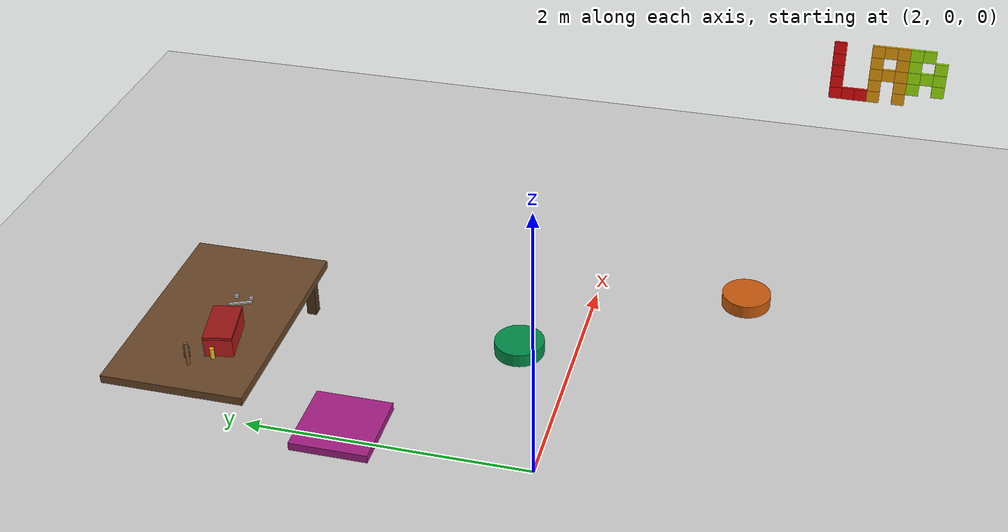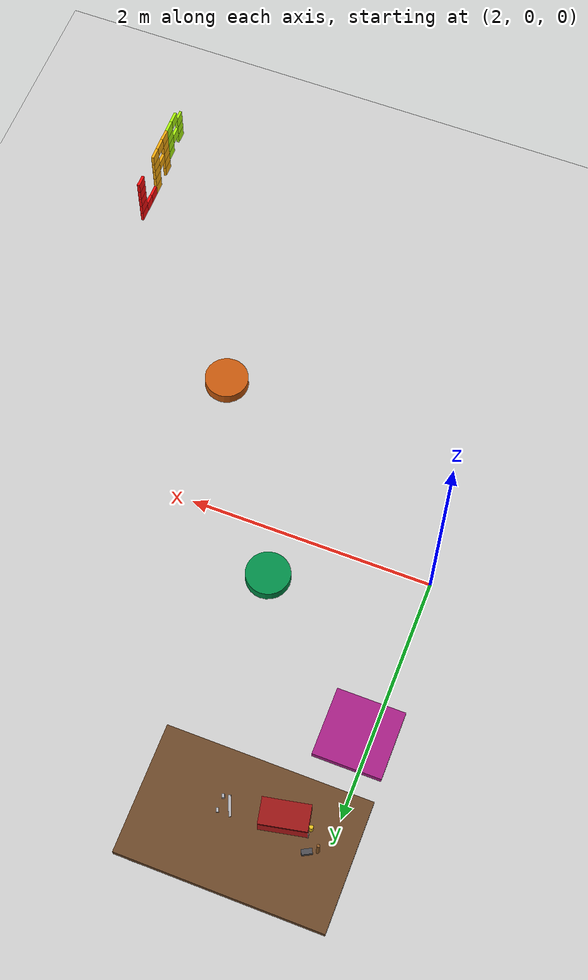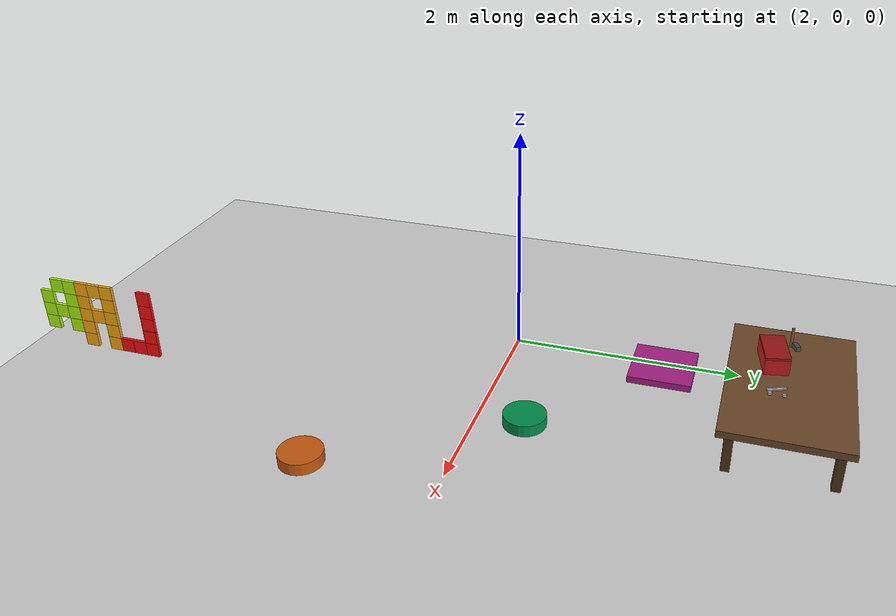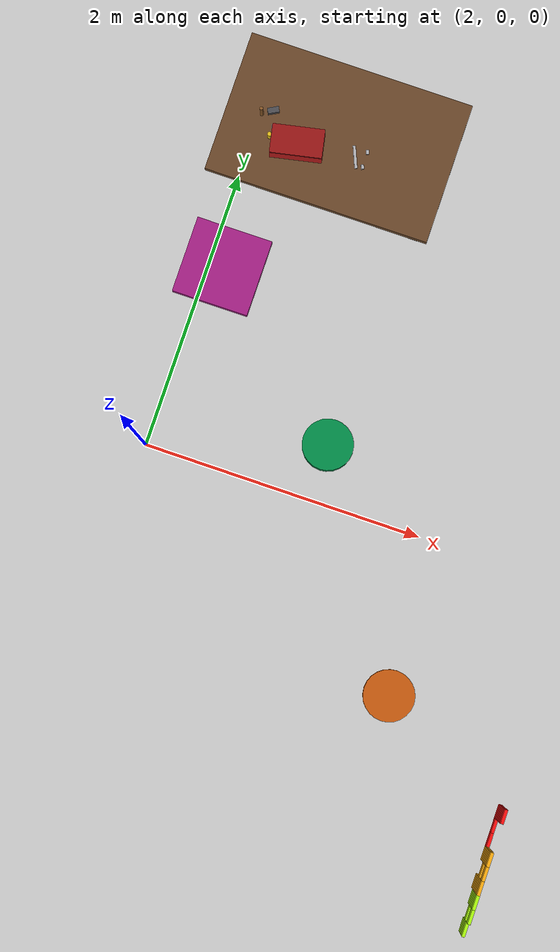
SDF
<sdf version="1.6">
 <world name="collab_workshop">
  <include><uri>model://ground_plane</uri></include>
  <include><uri>model://sun</uri></include>
  <model name="lab_letter_0_0_0">
   <pose>4.97 -1.5450000000000002 1.775 0 0 0.0</pose>
   <static>true</static>
   <link name="link">
    <visual name="visual">
     <geometry><box><size>0.02 0.09 0.09</size></box></geometry>
     <material><ambient>0.98 0.049 0.049 1</ambient><diffuse>0.98 0.049 0.049 1</diffuse></material>
    </visual>
   </link>
  </model>
  <model name="lab_letter_0_1_0">
   <pose>4.97 -1.5450000000000002 1.685 0 0 0.0</pose>
   <static>true</static>
   <link name="link">
    <visual name="visual">
     <geometry><box><size>0.02 0.09 0.09</size></box></geometry>
     <material><ambient>0.98 0.049 0.049 1</ambient><diffuse>0.98 0.049 0.049 1</diffuse></material>
    </visual>
   </link>
  </model>
  <model name="lab_letter_0_2_0">
   <pose>4.97 -1.5450000000000002 1.595 0 0 0.0</pose>
   <static>true</static>
   <link name="link">
    <visual name="visual">
     <geometry><box><size>0.02 0.09 0.09</size></box></geometry>
     <material><ambient>0.98 0.049 0.049 1</ambient><diffuse>0.98 0.049 0.049 1</diffuse></material>
    </visual>
   </link>
  </model>
  <model name="lab_letter_0_3_0">
   <pose>4.97 -1.5450000000000002 1.505 0 0 0.0</pose>
   <static>true</static>
   <link name="link">
    <visual name="visual">
     <geometry><box><size>0.02 0.09 0.09</size></box></geometry>
     <material><ambient>0.98 0.049 0.049 1</ambient><diffuse>0.98 0.049 0.049 1</diffuse></material>
    </visual>
   </link>
  </model>
  <model name="lab_letter_0_4_0">
   <pose>4.97 -1.5450000000000002 1.415 0 0 0.0</pose>
   <static>true</static>
   <link name="link">
    <visual name="visual">
     <geometry><box><size>0.02 0.09 0.09</size></box></geometry>
     <material><ambient>0.98 0.049 0.049 1</ambient><diffuse>0.98 0.049 0.049 1</diffuse></material>
    </visual>
   </link>
  </model>
  <model name="lab_letter_0_4_1">
   <pose>4.97 -1.6350000000000002 1.415 0 0 0.0</pose>
   <static>true</static>
   <link name="link">
    <visual name="visual">
     <geometry><box><size>0.02 0.09 0.09</size></box></geometry>
     <material><ambient>0.98 0.049 0.049 1</ambient><diffuse>0.98 0.049 0.049 1</diffuse></material>
    </visual>
   </link>
  </model>
  <model name="lab_letter_0_4_2">
   <pose>4.97 -1.725 1.415 0 0 0.0</pose>
   <static>true</static>
   <link name="link">
    <visual name="visual">
     <geometry><box><size>0.02 0.09 0.09</size></box></geometry>
     <material><ambient>0.98 0.049 0.049 1</ambient><diffuse>0.98 0.049 0.049 1</diffuse></material>
    </visual>
   </link>
  </model>
  <model name="lab_letter_1_0_0">
   <pose>4.97 -1.8150000000000002 1.775 0 0 0.0</pose>
   <static>true</static>
   <link name="link">
    <visual name="visual">
     <geometry><box><size>0.02 0.09 0.09</size></box></geometry>
     <material><ambient>0.98 0.67 0.049 1</ambient><diffuse>0.98 0.67 0.049 1</diffuse></material>
    </visual>
   </link>
  </model>
  <model name="lab_letter_1_0_1">
   <pose>4.97 -1.9050000000000002 1.775 0 0 0.0</pose>
   <static>true</static>
   <link name="link">
    <visual name="visual">
     <geometry><box><size>0.02 0.09 0.09</size></box></geometry>
     <material><ambient>0.98 0.67 0.049 1</ambient><diffuse>0.98 0.67 0.049 1</diffuse></material>
    </visual>
   </link>
  </model>
  <model name="lab_letter_1_0_2">
   <pose>4.97 -1.995 1.775 0 0 0.0</pose>
   <static>true</static>
   <link name="link">
    <visual name="visual">
     <geometry><box><size>0.02 0.09 0.09</size></box></geometry>
     <material><ambient>0.98 0.67 0.049 1</ambient><diffuse>0.98 0.67 0.049 1</diffuse></material>
    </visual>
   </link>
  </model>
  <model name="lab_letter_1_1_0">
   <pose>4.97 -1.8150000000000002 1.685 0 0 0.0</pose>
   <static>true</static>
   <link name="link">
    <visual name="visual">
     <geometry><box><size>0.02 0.09 0.09</size></box></geometry>
     <material><ambient>0.98 0.67 0.049 1</ambient><diffuse>0.98 0.67 0.049 1</diffuse></material>
    </visual>
   </link>
  </model>
  <model name="lab_letter_1_1_2">
   <pose>4.97 -1.995 1.685 0 0 0.0</pose>
   <static>true</static>
   <link name="link">
    <visual name="visual">
     <geometry><box><size>0.02 0.09 0.09</size></box></geometry>
     <material><ambient>0.98 0.67 0.049 1</ambient><diffuse>0.98 0.67 0.049 1</diffuse></material>
    </visual>
   </link>
  </model>
  <model name="lab_letter_1_2_0">
   <pose>4.97 -1.8150000000000002 1.595 0 0 0.0</pose>
   <static>true</static>
   <link name="link">
    <visual name="visual">
     <geometry><box><size>0.02 0.09 0.09</size></box></geometry>
     <material><ambient>0.98 0.67 0.049 1</ambient><diffuse>0.98 0.67 0.049 1</diffuse></material>
    </visual>
   </link>
  </model>
  <model name="lab_letter_1_2_1">
   <pose>4.97 -1.9050000000000002 1.595 0 0 0.0</pose>
   <static>true</static>
   <link name="link">
    <visual name="visual">
     <geometry><box><size>0.02 0.09 0.09</size></box></geometry>
     <material><ambient>0.98 0.67 0.049 1</ambient><diffuse>0.98 0.67 0.049 1</diffuse></material>
    </visual>
   </link>
  </model>
  <model name="lab_letter_1_2_2">
   <pose>4.97 -1.995 1.595 0 0 0.0</pose>
   <static>true</static>
   <link name="link">
    <visual name="visual">
     <geometry><box><size>0.02 0.09 0.09</size></box></geometry>
     <material><ambient>0.98 0.67 0.049 1</ambient><diffuse>0.98 0.67 0.049 1</diffuse></material>
    </visual>
   </link>
  </model>
  <model name="lab_letter_1_3_0">
   <pose>4.97 -1.8150000000000002 1.505 0 0 0.0</pose>
   <static>true</static>
   <link name="link">
    <visual name="visual">
     <geometry><box><size>0.02 0.09 0.09</size></box></geometry>
     <material><ambient>0.98 0.67 0.049 1</ambient><diffuse>0.98 0.67 0.049 1</diffuse></material>
    </visual>
   </link>
  </model>
  <model name="lab_letter_1_3_2">
   <pose>4.97 -1.995 1.505 0 0 0.0</pose>
   <static>true</static>
   <link name="link">
    <visual name="visual">
     <geometry><box><size>0.02 0.09 0.09</size></box></geometry>
     <material><ambient>0.98 0.67 0.049 1</ambient><diffuse>0.98 0.67 0.049 1</diffuse></material>
    </visual>
   </link>
  </model>
  <model name="lab_letter_1_4_0">
   <pose>4.97 -1.8150000000000002 1.415 0 0 0.0</pose>
   <static>true</static>
   <link name="link">
    <visual name="visual">
     <geometry><box><size>0.02 0.09 0.09</size></box></geometry>
     <material><ambient>0.98 0.67 0.049 1</ambient><diffuse>0.98 0.67 0.049 1</diffuse></material>
    </visual>
   </link>
  </model>
  <model name="lab_letter_1_4_2">
   <pose>4.97 -1.995 1.415 0 0 0.0</pose>
   <static>true</static>
   <link name="link">
    <visual name="visual">
     <geometry><box><size>0.02 0.09 0.09</size></box></geometry>
     <material><ambient>0.98 0.67 0.049 1</ambient><diffuse>0.98 0.67 0.049 1</diffuse></material>
    </visual>
   </link>
  </model>
  <model name="lab_letter_2_0_0">
   <pose>4.97 -2.0850000000000004 1.775 0 0 0.0</pose>
   <static>true</static>
   <link name="link">
    <visual name="visual">
     <geometry><box><size>0.02 0.09 0.09</size></box></geometry>
     <material><ambient>0.67 0.98 0.049 1</ambient><diffuse>0.67 0.98 0.049 1</diffuse></material>
    </visual>
   </link>
  </model>
  <model name="lab_letter_2_0_1">
   <pose>4.97 -2.1750000000000003 1.775 0 0 0.0</pose>
   <static>true</static>
   <link name="link">
    <visual name="visual">
     <geometry><box><size>0.02 0.09 0.09</size></box></geometry>
     <material><ambient>0.67 0.98 0.049 1</ambient><diffuse>0.67 0.98 0.049 1</diffuse></material>
    </visual>
   </link>
  </model>
  <model name="lab_letter_2_1_0">
   <pose>4.97 -2.0850000000000004 1.685 0 0 0.0</pose>
   <static>true</static>
   <link name="link">
    <visual name="visual">
     <geometry><box><size>0.02 0.09 0.09</size></box></geometry>
     <material><ambient>0.67 0.98 0.049 1</ambient><diffuse>0.67 0.98 0.049 1</diffuse></material>
    </visual>
   </link>
  </model>
  <model name="lab_letter_2_1_2">
   <pose>4.97 -2.265 1.685 0 0 0.0</pose>
   <static>true</static>
   <link name="link">
    <visual name="visual">
     <geometry><box><size>0.02 0.09 0.09</size></box></geometry>
     <material><ambient>0.67 0.98 0.049 1</ambient><diffuse>0.67 0.98 0.049 1</diffuse></material>
    </visual>
   </link>
  </model>
  <model name="lab_letter_2_2_0">
   <pose>4.97 -2.0850000000000004 1.595 0 0 0.0</pose>
   <static>true</static>
   <link name="link">
    <visual name="visual">
     <geometry><box><size>0.02 0.09 0.09</size></box></geometry>
     <material><ambient>0.67 0.98 0.049 1</ambient><diffuse>0.67 0.98 0.049 1</diffuse></material>
    </visual>
   </link>
  </model>
  <model name="lab_letter_2_2_1">
   <pose>4.97 -2.1750000000000003 1.595 0 0 0.0</pose>
   <static>true</static>
   <link name="link">
    <visual name="visual">
     <geometry><box><size>0.02 0.09 0.09</size></box></geometry>
     <material><ambient>0.67 0.98 0.049 1</ambient><diffuse>0.67 0.98 0.049 1</diffuse></material>
    </visual>
   </link>
  </model>
  <model name="lab_letter_2_2_2">
   <pose>4.97 -2.265 1.595 0 0 0.0</pose>
   <static>true</static>
   <link name="link">
    <visual name="visual">
     <geometry><box><size>0.02 0.09 0.09</size></box></geometry>
     <material><ambient>0.67 0.98 0.049 1</ambient><diffuse>0.67 0.98 0.049 1</diffuse></material>
    </visual>
   </link>
  </model>
  <model name="lab_letter_2_3_0">
   <pose>4.97 -2.0850000000000004 1.505 0 0 0.0</pose>
   <static>true</static>
   <link name="link">
    <visual name="visual">
     <geometry><box><size>0.02 0.09 0.09</size></box></geometry>
     <material><ambient>0.67 0.98 0.049 1</ambient><diffuse>0.67 0.98 0.049 1</diffuse></material>
    </visual>
   </link>
  </model>
  <model name="lab_letter_2_3_2">
   <pose>4.97 -2.265 1.505 0 0 0.0</pose>
   <static>true</static>
   <link name="link">
    <visual name="visual">
     <geometry><box><size>0.02 0.09 0.09</size></box></geometry>
     <material><ambient>0.67 0.98 0.049 1</ambient><diffuse>0.67 0.98 0.049 1</diffuse></material>
    </visual>
   </link>
  </model>
  <model name="tool_bench_top">
   <pose>2.6 2.4 0.375 0 0 0.0</pose>
   <static>true</static>
   <link name="link">
    <visual name="visual">
     <geometry><box><size>1.6 1.0 0.06</size></box></geometry>
     <material><ambient>0.42 0.28 0.16 1</ambient><diffuse>0.42 0.28 0.16 1</diffuse></material>
    </visual>
    <collision name="collision"><geometry><box><size>1.6 1.0 0.06</size></box></geometry></collision>
   </link>
  </model>
  <model name="tool_bench_leg_2">
   <pose>3.3 2.0 0.18 0 0 0.0</pose>
   <static>true</static>
   <link name="link">
    <visual name="visual">
     <geometry><box><size>0.07 0.07 0.36</size></box></geometry>
     <material><ambient>0.3 0.2 0.1 1</ambient><diffuse>0.3 0.2 0.1 1</diffuse></material>
    </visual>
    <collision name="collision"><geometry><box><size>0.07 0.07 0.36</size></box></geometry></collision>
   </link>
  </model>
  <model name="tool_bench_leg_3">
   <pose>3.3 2.8 0.18 0 0 0.0</pose>
   <static>true</static>
   <link name="link">
    <visual name="visual">
     <geometry><box><size>0.07 0.07 0.36</size></box></geometry>
     <material><ambient>0.3 0.2 0.1 1</ambient><diffuse>0.3 0.2 0.1 1</diffuse></material>
    </visual>
    <collision name="collision"><geometry><box><size>0.07 0.07 0.36</size></box></geometry></collision>
   </link>
  </model>
  <model name="toolbox">
   <pose>2.35 2.25 0.47 0 0 0.2</pose>
   <static>true</static>
   <link name="link">
    <visual name="visual">
     <geometry><box><size>0.36 0.2 0.14</size></box></geometry>
     <material><ambient>0.75 0.1 0.1 1</ambient><diffuse>0.75 0.1 0.1 1</diffuse></material>
    </visual>
    <collision name="collision"><geometry><box><size>0.36 0.2 0.14</size></box></geometry></collision>
   </link>
  </model>
  <model name="toolbox_lid">
   <pose>2.35 2.25 0.55 0 0 0.2</pose>
   <static>true</static>
   <link name="link">
    <visual name="visual">
     <geometry><box><size>0.36 0.2 0.02</size></box></geometry>
     <material><ambient>0.6 0.08 0.08 1</ambient><diffuse>0.6 0.08 0.08 1</diffuse></material>
    </visual>
    <collision name="collision"><geometry><box><size>0.36 0.2 0.02</size></box></geometry></collision>
   </link>
  </model>
  <model name="wrench_handle">
   <pose>2.75 2.3 0.42 0 0 0.4</pose>
   <static>true</static>
   <link name="link">
    <visual name="visual">
     <geometry><box><size>0.02 0.16 0.012</size></box></geometry>
     <material><ambient>0.7 0.7 0.72 1</ambient><diffuse>0.7 0.7 0.72 1</diffuse></material>
    </visual>
    <collision name="collision"><geometry><box><size>0.02 0.16 0.012</size></box></geometry></collision>
   </link>
  </model>
  <model name="wrench_jaw_a">
   <pose>2.82 2.25 0.42 0 0 0.4</pose>
   <static>true</static>
   <link name="link">
    <visual name="visual">
     <geometry><box><size>0.02 0.03 0.02</size></box></geometry>
     <material><ambient>0.7 0.7 0.72 1</ambient><diffuse>0.7 0.7 0.72 1</diffuse></material>
    </visual>
    <collision name="collision"><geometry><box><size>0.02 0.03 0.02</size></box></geometry></collision>
   </link>
  </model>
  <model name="wrench_jaw_b">
   <pose>2.82 2.36 0.42 0 0 0.4</pose>
   <static>true</static>
   <link name="link">
    <visual name="visual">
     <geometry><box><size>0.02 0.03 0.02</size></box></geometry>
     <material><ambient>0.7 0.7 0.72 1</ambient><diffuse>0.7 0.7 0.72 1</diffuse></material>
    </visual>
    <collision name="collision"><geometry><box><size>0.02 0.03 0.02</size></box></geometry></collision>
   </link>
  </model>
  <model name="hammer_handle">
   <pose>2.05 2.38 0.45 0 0 0.5</pose>
   <static>true</static>
   <link name="link">
    <visual name="visual">
     <geometry><cylinder><radius>0.012</radius><length>0.26</length></cylinder></geometry>
     <material><ambient>0.55 0.35 0.15 1</ambient><diffuse>0.55 0.35 0.15 1</diffuse></material>
    </visual>
   </link>
  </model>
  <model name="hammer_head">
   <pose>2.12 2.42 0.45 0 0 0.5</pose>
   <static>true</static>
   <link name="link">
    <visual name="visual">
     <geometry><box><size>0.08 0.04 0.04</size></box></geometry>
     <material><ambient>0.3 0.3 0.32 1</ambient><diffuse>0.3 0.3 0.32 1</diffuse></material>
    </visual>
    <collision name="collision"><geometry><box><size>0.08 0.04 0.04</size></box></geometry></collision>
   </link>
  </model>
  <model name="screwdriver_handle">
   <pose>2.15 2.25 0.44 0 0 1.1</pose>
   <static>true</static>
   <link name="link">
    <visual name="visual">
     <geometry><cylinder><radius>0.015</radius><length>0.09</length></cylinder></geometry>
     <material><ambient>0.9 0.75 0.1 1</ambient><diffuse>0.9 0.75 0.1 1</diffuse></material>
    </visual>
   </link>
  </model>
  <model name="screwdriver_shaft">
   <pose>2.15 2.31 0.44 0 0 1.1</pose>
   <static>true</static>
   <link name="link">
    <visual name="visual">
     <geometry><cylinder><radius>0.004</radius><length>0.13</length></cylinder></geometry>
     <material><ambient>0.75 0.75 0.78 1</ambient><diffuse>0.75 0.75 0.78 1</diffuse></material>
    </visual>
   </link>
  </model>
  <model name="station_a_marker">
   <pose>3.2 0.4 0.05 0 0 0.0</pose>
   <static>true</static>
   <link name="link">
    <visual name="visual">
     <geometry><cylinder><radius>0.18</radius><length>0.1</length></cylinder></geometry>
     <material><ambient>0.0 0.55 0.28 1</ambient><diffuse>0.0 0.55 0.28 1</diffuse></material>
    </visual>
   </link>
  </model>
  <model name="station_b_marker">
   <pose>4.15 -1.1 0.05 0 0 0.0</pose>
   <static>true</static>
   <link name="link">
    <visual name="visual">
     <geometry><cylinder><radius>0.18</radius><length>0.1</length></cylinder></geometry>
     <material><ambient>0.78 0.35 0.05 1</ambient><diffuse>0.78 0.35 0.05 1</diffuse></material>
    </visual>
   </link>
  </model>
  <model name="handover_zone_marker">
   <pose>2.1 1.35 0.03 0 0 0.0</pose>
   <static>true</static>
   <link name="link">
    <visual name="visual">
     <geometry><box><size>0.55 0.55 0.06</size></box></geometry>
     <material><ambient>0.65 0.12 0.52 1</ambient><diffuse>0.65 0.12 0.52 1</diffuse></material>
    </visual>
   </link>
  </model>
 </world>
</sdf>
